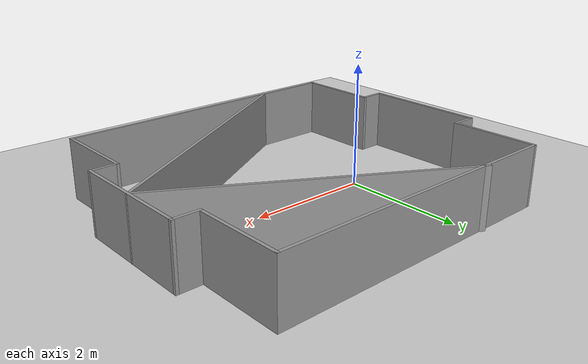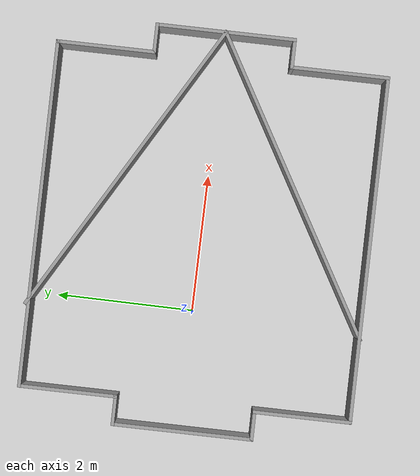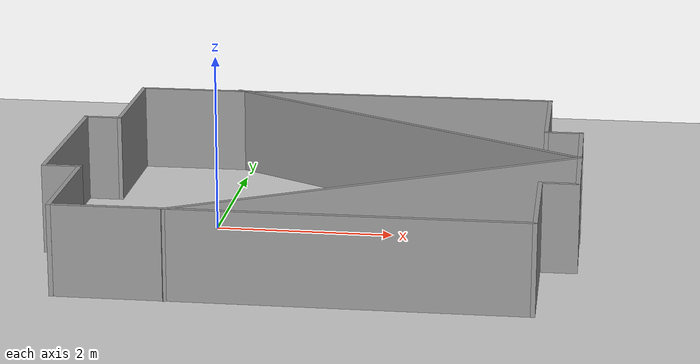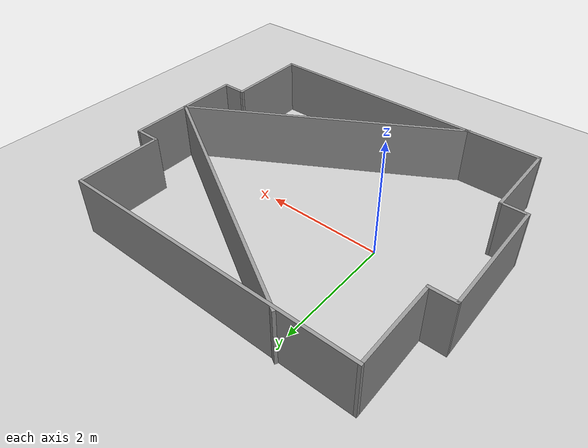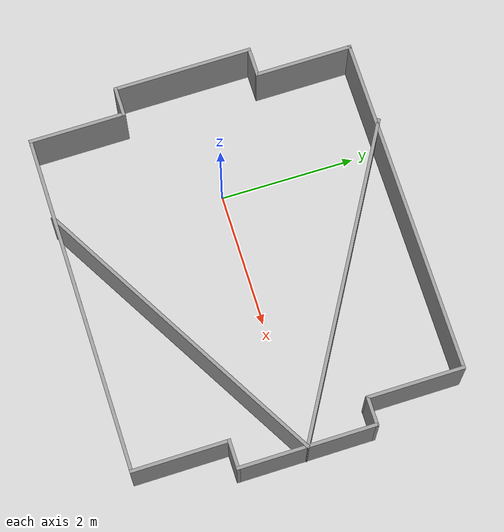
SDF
<sdf version="1.6">
 <world name="default">
  <light name="sun" type="directional">
   <pose>0 0 10 0 -0 0</pose>
   <diffuse>0.8 0.8 0.8 1</diffuse>
   <specular>0.2 0.2 0.2 1</specular>
   <attenuation>
    <range>1000</range>
    <constant>0.9</constant>
    <linear>0.01</linear>
    <quadratic>0.001</quadratic>
   </attenuation>
   <direction>-0.5 0.1 -0.9</direction>
  </light>
  <model name="ground_plane">
   <static>1</static>
   <link name="link">
    <collision name="collision">
     <geometry><plane><normal>0 0 1</normal><size>100 100</size></plane></geometry>
     <surface><friction><ode><mu>100</mu><mu2>50</mu2></ode></friction></surface>
    </collision>
    <visual name="visual">
     <cast_shadows>0</cast_shadows>
     <geometry><plane><normal>0 0 1</normal><size>100 100</size></plane></geometry>
     <material>
      <script><uri>file://media/materials/scripts/gazebo.material</uri><name>Gazebo/Grey</name></script>
     </material>
    </visual>
   </link>
  </model>
  <gravity>0 0 -9.8</gravity>
  <magnetic_field>6e-06 2.3e-05 -4.2e-05</magnetic_field>
  <atmosphere type="adiabatic"/>
  <physics name="default_physics" default="0" type="ode">
   <max_step_size>0.001</max_step_size>
   <real_time_factor>1</real_time_factor>
   <real_time_update_rate>1000</real_time_update_rate>
  </physics>
  <scene><ambient>0.4 0.4 0.4 1</ambient><background>0.7 0.7 0.7 1</background><shadows>1</shadows></scene>
  <spherical_coordinates>
   <surface_model>EARTH_WGS84</surface_model>
   <latitude_deg>0</latitude_deg>
   <longitude_deg>0</longitude_deg>
   <elevation>0</elevation>
   <heading_deg>0</heading_deg>
  </spherical_coordinates>
  <model name="rgarena3">
   <pose>1.17795 -0.017119 0 0 0 -1.56361</pose>
   <link name="Wall_0">
    <collision name="Wall_0_Collision">
     <geometry><box><size>5.05 0.05 1</size></box></geometry>
     <pose>0 0 0.5 0 -0 0</pose>
    </collision>
    <visual name="Wall_0_Visual">
     <pose>0 0 0.5 0 -0 0</pose>
     <geometry><box><size>5.05 0.05 1</size></box></geometry>
     <material>
      <script><uri>file://media/materials/scripts/gazebo.material</uri><name>Gazebo/Grey</name></script>
      <ambient>1 1 1 1</ambient>
     </material>
     <meta><layer>0</layer></meta>
    </visual>
    <pose>-2.38398 -0.004575 0 0 -0 1.5708</pose>
   </link>
   <link name="Wall_14">
    <collision name="Wall_14_Collision">
     <geometry><box><size>1.45 0.05 1</size></box></geometry>
     <pose>0 0 0.5 0 -0 0</pose>
    </collision>
    <visual name="Wall_14_Visual">
     <pose>0 0 0.5 0 -0 0</pose>
     <geometry><box><size>1.45 0.05 1</size></box></geometry>
     <material>
      <script><uri>file://media/materials/scripts/gazebo.material</uri><name>Gazebo/Grey</name></script>
      <ambient>1 1 1 1</ambient>
     </material>
     <meta><layer>0</layer></meta>
    </visual>
    <pose>-1.68398 -2.50457 0 0 -0 0</pose>
   </link>
   <link name="Wall_16">
    <collision name="Wall_16_Collision">
     <geometry><box><size>0.45 0.05 1</size></box></geometry>
     <pose>0 0 0.5 0 -0 0</pose>
    </collision>
    <visual name="Wall_16_Visual">
     <pose>0 0 0.5 0 -0 0</pose>
     <geometry><box><size>0.45 0.05 1</size></box></geometry>
     <material>
      <script><uri>file://media/materials/scripts/gazebo.material</uri><name>Gazebo/Grey</name></script>
      <ambient>1 1 1 1</ambient>
     </material>
     <meta><layer>0</layer></meta>
    </visual>
    <pose>-0.983982 -2.70458 0 0 -0 -1.5708</pose>
   </link>
   <link name="Wall_18">
    <collision name="Wall_18_Collision">
     <geometry><box><size>2.065 0.05 1</size></box></geometry>
     <pose>0 0 0.5 0 -0 0</pose>
    </collision>
    <visual name="Wall_18_Visual">
     <pose>0 0 0.5 0 -0 0</pose>
     <geometry><box><size>2.065 0.05 1</size></box></geometry>
     <material>
      <script><uri>file://media/materials/scripts/gazebo.material</uri><name>Gazebo/Grey</name></script>
      <ambient>1 1 1 1</ambient>
     </material>
     <meta><layer>0</layer></meta>
    </visual>
    <pose>0.023518 -2.90457 0 0 -0 0</pose>
   </link>
   <link name="Wall_19">
    <collision name="Wall_19_Collision">
     <geometry><box><size>0.45 0.05 1</size></box></geometry>
     <pose>0 0 0.5 0 -0 0</pose>
    </collision>
    <visual name="Wall_19_Visual">
     <pose>0 0 0.5 0 -0 0</pose>
     <geometry><box><size>0.45 0.05 1</size></box></geometry>
     <material>
      <script><uri>file://media/materials/scripts/gazebo.material</uri><name>Gazebo/Grey</name></script>
      <ambient>1 1 1 1</ambient>
     </material>
     <meta><layer>0</layer></meta>
    </visual>
    <pose>1.03102 -2.70458 0 0 -0 1.5708</pose>
   </link>
   <link name="Wall_20">
    <collision name="Wall_20_Collision">
     <geometry><box><size>1.4359 0.05 1</size></box></geometry>
     <pose>0 0 0.5 0 -0 0</pose>
    </collision>
    <visual name="Wall_20_Visual">
     <pose>0 0 0.5 0 -0 0</pose>
     <geometry><box><size>1.4359 0.05 1</size></box></geometry>
     <material>
      <script><uri>file://media/materials/scripts/gazebo.material</uri><name>Gazebo/Grey</name></script>
      <ambient>1 1 1 1</ambient>
     </material>
     <meta><layer>0</layer></meta>
    </visual>
    <pose>1.72352 -2.50457 0 0 -0 0</pose>
   </link>
   <link name="Wall_23">
    <collision name="Wall_23_Collision">
     <geometry><box><size>5.05 0.05 1</size></box></geometry>
     <pose>0 0 0.5 0 -0 0</pose>
    </collision>
    <visual name="Wall_23_Visual">
     <pose>0 0 0.5 0 -0 0</pose>
     <geometry><box><size>5.05 0.05 1</size></box></geometry>
     <material>
      <script><uri>file://media/materials/scripts/gazebo.material</uri><name>Gazebo/Grey</name></script>
      <ambient>1 1 1 1</ambient>
     </material>
     <meta><layer>0</layer></meta>
    </visual>
    <pose>2.41602 -0.004575 0 0 -0 1.5708</pose>
   </link>
   <link name="Wall_25">
    <collision name="Wall_25_Collision">
     <geometry><box><size>1.45 0.05 1</size></box></geometry>
     <pose>0 0 0.5 0 -0 0</pose>
    </collision>
    <visual name="Wall_25_Visual">
     <pose>0 0 0.5 0 -0 0</pose>
     <geometry><box><size>1.45 0.05 1</size></box></geometry>
     <material>
      <script><uri>file://media/materials/scripts/gazebo.material</uri><name>Gazebo/Grey</name></script>
      <ambient>1 1 1 1</ambient>
     </material>
     <meta><layer>0</layer></meta>
    </visual>
    <pose>1.71602 2.49543 0 0 -0 3.14159</pose>
   </link>
   <link name="Wall_28">
    <collision name="Wall_28_Collision">
     <geometry><box><size>0.45 0.05 1</size></box></geometry>
     <pose>0 0 0.5 0 -0 0</pose>
    </collision>
    <visual name="Wall_28_Visual">
     <pose>0 0 0.5 0 -0 0</pose>
     <geometry><box><size>0.45 0.05 1</size></box></geometry>
     <material>
      <script><uri>file://media/materials/scripts/gazebo.material</uri><name>Gazebo/Grey</name></script>
      <ambient>1 1 1 1</ambient>
     </material>
     <meta><layer>0</layer></meta>
    </visual>
    <pose>1.01602 2.69543 0 0 -0 1.5708</pose>
   </link>
   <link name="Wall_29">
    <collision name="Wall_29_Collision">
     <geometry><box><size>2.05 0.05 1</size></box></geometry>
     <pose>0 0 0.5 0 -0 0</pose>
    </collision>
    <visual name="Wall_29_Visual">
     <pose>0 0 0.5 0 -0 0</pose>
     <geometry><box><size>2.05 0.05 1</size></box></geometry>
     <material>
      <script><uri>file://media/materials/scripts/gazebo.material</uri><name>Gazebo/Grey</name></script>
      <ambient>1 1 1 1</ambient>
     </material>
     <meta><layer>0</layer></meta>
    </visual>
    <pose>0.016018 2.89542 0 0 -0 3.14159</pose>
   </link>
   <link name="Wall_30">
    <collision name="Wall_30_Collision">
     <geometry><box><size>0.45 0.05 1</size></box></geometry>
     <pose>0 0 0.5 0 -0 0</pose>
    </collision>
    <visual name="Wall_30_Visual">
     <pose>0 0 0.5 0 -0 0</pose>
     <geometry><box><size>0.45 0.05 1</size></box></geometry>
     <material>
      <script><uri>file://media/materials/scripts/gazebo.material</uri><name>Gazebo/Grey</name></script>
      <ambient>1 1 1 1</ambient>
     </material>
     <meta><layer>0</layer></meta>
    </visual>
    <pose>-0.983982 2.69543 0 0 -0 -1.5708</pose>
   </link>
   <link name="Wall_31">
    <collision name="Wall_31_Collision">
     <geometry><box><size>1.45 0.05 1</size></box></geometry>
     <pose>0 0 0.5 0 -0 0</pose>
    </collision>
    <visual name="Wall_31_Visual">
     <pose>0 0 0.5 0 -0 0</pose>
     <geometry><box><size>1.45 0.05 1</size></box></geometry>
     <material>
      <script><uri>file://media/materials/scripts/gazebo.material</uri><name>Gazebo/Grey</name></script>
      <ambient>1 1 1 1</ambient>
     </material>
     <meta><layer>0</layer></meta>
    </visual>
    <pose>-1.68398 2.49543 0 0 -0 3.14159</pose>
   </link>
   <link name="Wall_41">
    <collision name="Wall_41_Collision">
     <geometry><box><size>4.90776 0.05 1</size></box></geometry>
     <pose>0 0 0.5 0 -0 0</pose>
    </collision>
    <visual name="Wall_41_Visual">
     <pose>0 0 0.5 0 -0 0</pose>
     <geometry><box><size>4.90776 0.05 1</size></box></geometry>
     <material>
      <script><uri>file://media/materials/scripts/gazebo.material</uri><name>Gazebo/Grey</name></script>
      <ambient>1 1 1 1</ambient>
     </material>
     <meta><layer>0</layer></meta>
    </visual>
    <pose>-1.20448 0.795425 0 0 -0 -2.09727</pose>
   </link>
   <link name="Wall_43">
    <collision name="Wall_43_Collision">
     <geometry><box><size>4.89183 0.05 1</size></box></geometry>
     <pose>0 0 0.5 0 -0 0</pose>
    </collision>
    <visual name="Wall_43_Visual">
     <pose>0 0 0.5 0 -0 0</pose>
     <geometry><box><size>4.89183 0.05 1</size></box></geometry>
     <material>
      <script><uri>file://media/materials/scripts/gazebo.material</uri><name>Gazebo/Grey</name></script>
      <ambient>1 1 1 1</ambient>
     </material>
     <meta><layer>0</layer></meta>
    </visual>
    <pose>1.22052 0.795425 0 0 -0 -1.05004</pose>
   </link>
   <static>1</static>
  </model>
 </world>
</sdf>
